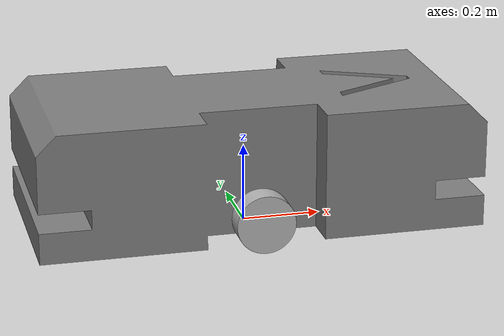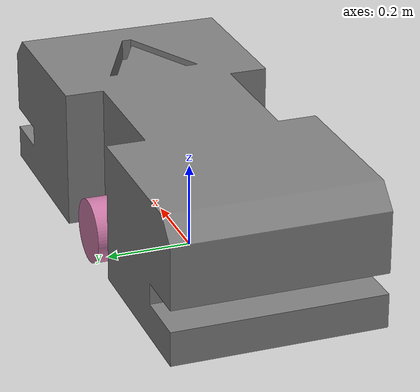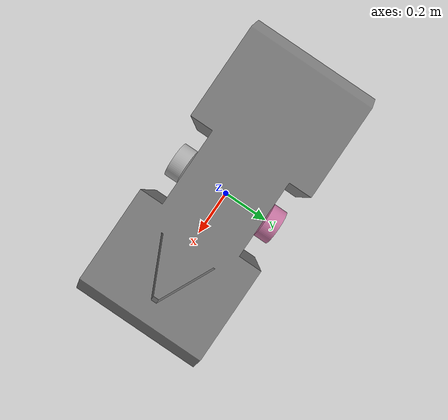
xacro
<?xml version="1.0"?>

<robot name="carver_cap" xmlns:xacro="http://www.ros.org/wiki/xacro">

    <!-- Color Material -->
    <material name="gray">
        <color rgba="0.5 0.5 0.5 1"/>
    </material>

    <!-- Base Footprint Link -->
        <link name="base_footprint"/>

    <!-- Chassis -->
        <!-- Joint -->
        <joint name="chassis_joint" type="fixed">
            <origin xyz="0.0 0 0.35" rpy="0 0 0"/>
            <parent link="base_footprint"/>
            <child link="chassis_link"/>
        </joint>
        <!-- Link -->
        <link name="chassis_link">
            <visual name="">
                <origin xyz="0 0 0" rpy="0 0 0" />
                <geometry>
                    <mesh filename="file://$(find robot_description)/models/FrameNew.STL" scale="1 1 1"/>
                </geometry>
                <material name="gray"/>
            </visual>
            <collision>
                <origin xyz="0 0 0" rpy="0 0 0"/>
                <geometry>
                    <mesh filename="file://$(find robot_description)/models/FrameNew.STL" scale="1 1 1"/>
                </geometry>
            </collision>
        </link>

    <!-- IMU -->
        <!-- Joint -->
        <joint name="imu_joint" type="fixed">
            <origin xyz="0 0 0" rpy="0 3.14 3.14"/>
            <parent link="chassis_link"/>
            <child link="imu_link"/>
        </joint>
        <!-- Link -->
        <link name="imu_link"/>

    <!-- Camera -->
        <!-- Joint -->
        <joint name="camera_joint" type="fixed">
            <origin xyz="0 0 0.4" rpy="0 0 0"/>
            <parent link="chassis_link"/>
            <child link="camera_link"/>
        </joint>
        <!-- Link -->
        <link name="camera_link"/>

    <!-- Front LiDar -->
        <!-- Joint -->
        <joint name="front_lidar_joint" type="fixed">
            <origin xyz="0.465 0 -0.2" rpy="3.14 0 0"/>
            <parent link="chassis_link"/>
            <child link="front_lidar_link"/>
        </joint>
        <!-- Link -->
        <link name="front_lidar_link"/>

    <!-- Back LiDar -->
        <!-- Joint -->
        <joint name="back_lidar_joint" type="fixed">
            <origin xyz="-0.465 0 -0.2" rpy="3.14 0 3.14"/>
            <parent link="chassis_link"/>
            <child link="back_lidar_link"/>
        </joint>
        <!-- Link -->
        <link name="back_lidar_link"/>

    <!-- Left Wheel -->
        <!-- Joint -->
        <joint name="left_wheel_joint" type="fixed">
            <origin xyz="0 0.185 -0.275" rpy="-1.57 0 0"/>
            <parent link="chassis_link"/>
            <child link="left_wheel_link"/>
            <axis xyz="0 1 0"/>
            <limit effort="10000.0" velocity="1000.0"/>
        </joint>
        <!-- Link -->
        <link name="left_wheel_link">
            <visual>
              <origin xyz="0 0 0" rpy="0 0 0"/>
              <geometry>
                  <mesh filename="file://$(find robot_description)/models/Wheel.STL" scale="1 1 1"/>
              </geometry>
            </visual>
            <collision>
                <origin xyz="0 0 0" rpy="0 0 0"/>
                <geometry>
                    <mesh filename="file://$(find robot_description)/models/Wheel.STL" scale="1 1 1"/>
                </geometry>
            </collision>
        </link>

    <!-- Right Wheel -->
        <!-- Joint -->
        <joint name="right_wheel_joint" type="fixed">
            <origin xyz="0 -0.185 -0.275" rpy="1.57 0 0"/>
            <parent link="chassis_link"/>
            <child link="right_wheel_link"/>
            <axis xyz="0 -1 0"/>
            <limit effort="10000.0" velocity="1000.0"/>
        </joint>
        <!-- Link -->
        <link name="right_wheel_link">
            <visual>
              <origin xyz="0 0 0" rpy="0 0 0"/>
              <geometry>
                  <mesh filename="file://$(find robot_description)/models/Wheel.STL" scale="1 1 1"/>
              </geometry>
            </visual>
            <collision>
                <origin xyz="0 0 0" rpy="0 0 0"/>
                <geometry>
                    <mesh filename="file://$(find robot_description)/models/Wheel.STL" scale="1 1 1"/>
                </geometry>
            </collision>
        </link>
</robot>
